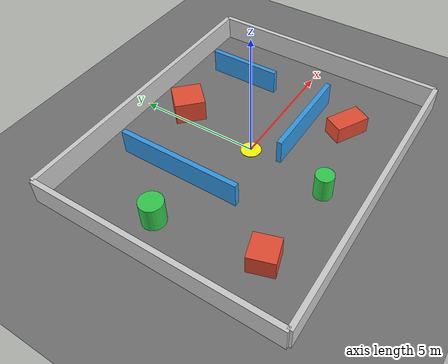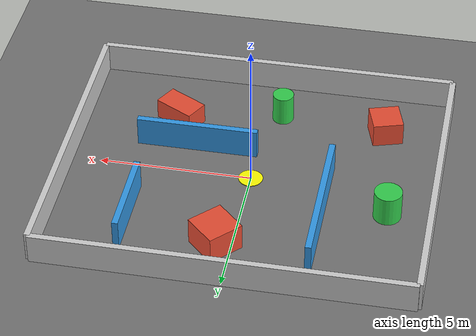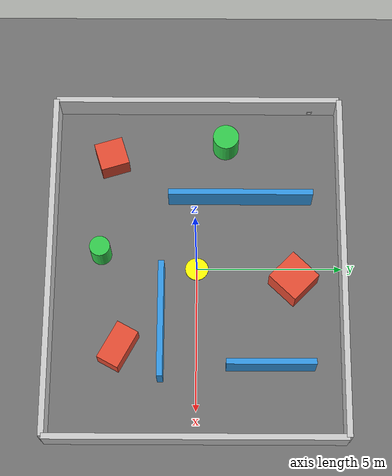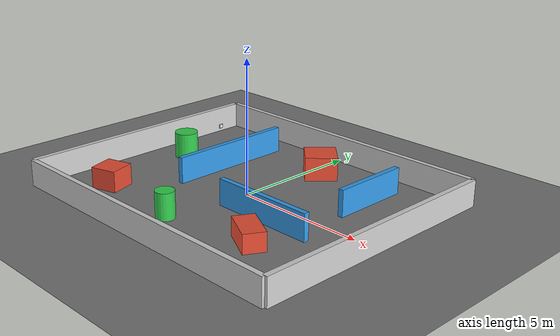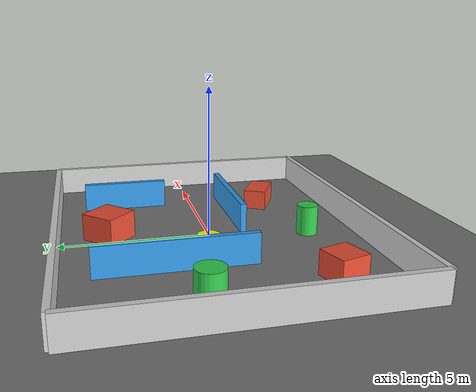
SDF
<sdf version='1.10'>
  <world name='auto_test_world'>
      <physics name='default_physics' type='ode'>
        <max_step_size>0.004</max_step_size>
        <real_time_factor>1.0</real_time_factor>
        <real_time_update_rate>250</real_time_update_rate>
      </physics>
    <plugin name='gz::sim::systems::Physics' filename='gz-sim-physics-system'/>
    <plugin name='gz::sim::systems::UserCommands' filename='gz-sim-user-commands-system'/>
    <plugin name='gz::sim::systems::SceneBroadcaster' filename='gz-sim-scene-broadcaster-system'/>
    <plugin name='gz::sim::systems::Contact' filename='gz-sim-contact-system'/>
    <plugin name='gz::sim::systems::Sensors' filename='gz-sim-sensors-system'>
      <render_engine>ogre2</render_engine>
    </plugin>
    <gravity>0 0 -9.8000000000000007</gravity>
    <magnetic_field>5.5644999999999998e-06 2.2875799999999999e-05 -4.2388400000000002e-05</magnetic_field>
    <atmosphere type='adiabatic'/>
    <scene>
      <ambient>0.400000006 0.400000006 0.400000006 1</ambient>
      <background>0.699999988 0.699999988 0.699999988 1</background>
      <shadows>true</shadows>
    </scene>
    <model name='ground_plane'>
      <static>true</static>
      <pose>0 0 0 0 0 0</pose>
      <link name='link'>
        <pose>0 0 0 0 0 0</pose>
        <collision name='collision'>
          <geometry>
            <plane>
              <normal>0 0 1</normal>
              <size>30 30</size>
            </plane>
          </geometry>
          <surface>
            <friction>
              <ode/>
            </friction>
            <bounce/>
            <contact/>
          </surface>
        </collision>
        <visual name='visual'>
          <geometry>
            <plane>
              <normal>0 0 1</normal>
              <size>30 30</size>
            </plane>
          </geometry>
          <material>
            <ambient>0.449999988 0.449999988 0.449999988 1</ambient>
            <diffuse>0.449999988 0.449999988 0.449999988 1</diffuse>
          </material>
        </visual>
        <inertial>
          <pose>0 0 0 0 0 0</pose>
          <mass>1</mass>
          <inertia>
            <ixx>1</ixx>
            <ixy>0</ixy>
            <ixz>0</ixz>
            <iyy>1</iyy>
            <iyz>0</iyz>
            <izz>1</izz>
          </inertia>
        </inertial>
        <enable_wind>false</enable_wind>
      </link>
      <self_collide>false</self_collide>
    </model>
    <model name='wall_north'>
      <static>true</static>
      <pose>0 5 0.5 0 0 0</pose>
      <link name='link'>
        <collision name='collision'>
          <geometry>
            <box>
              <size>12 0.20000000000000001 1</size>
            </box>
          </geometry>
          <surface>
            <friction>
              <ode/>
            </friction>
            <bounce/>
            <contact/>
          </surface>
        </collision>
        <visual name='visual'>
          <geometry>
            <box>
              <size>12 0.20000000000000001 1</size>
            </box>
          </geometry>
          <material>
            <ambient>0.800000012 0.800000012 0.800000012 1</ambient>
            <diffuse>0.800000012 0.800000012 0.800000012 1</diffuse>
          </material>
        </visual>
        <pose>0 0 0 0 0 0</pose>
        <inertial>
          <pose>0 0 0 0 0 0</pose>
          <mass>1</mass>
          <inertia>
            <ixx>1</ixx>
            <ixy>0</ixy>
            <ixz>0</ixz>
            <iyy>1</iyy>
            <iyz>0</iyz>
            <izz>1</izz>
          </inertia>
        </inertial>
        <enable_wind>false</enable_wind>
      </link>
      <self_collide>false</self_collide>
    </model>
    <model name='wall_south'>
      <static>true</static>
      <pose>0 -5 0.5 0 0 0</pose>
      <link name='link'>
        <collision name='collision'>
          <geometry>
            <box>
              <size>12 0.20000000000000001 1</size>
            </box>
          </geometry>
          <surface>
            <friction>
              <ode/>
            </friction>
            <bounce/>
            <contact/>
          </surface>
        </collision>
        <visual name='visual'>
          <geometry>
            <box>
              <size>12 0.20000000000000001 1</size>
            </box>
          </geometry>
          <material>
            <ambient>0.800000012 0.800000012 0.800000012 1</ambient>
            <diffuse>0.800000012 0.800000012 0.800000012 1</diffuse>
          </material>
        </visual>
        <pose>0 0 0 0 0 0</pose>
        <inertial>
          <pose>0 0 0 0 0 0</pose>
          <mass>1</mass>
          <inertia>
            <ixx>1</ixx>
            <ixy>0</ixy>
            <ixz>0</ixz>
            <iyy>1</iyy>
            <iyz>0</iyz>
            <izz>1</izz>
          </inertia>
        </inertial>
        <enable_wind>false</enable_wind>
      </link>
      <self_collide>false</self_collide>
    </model>
    <model name='wall_east'>
      <static>true</static>
      <pose>6 0 0.5 0 0 0</pose>
      <link name='link'>
        <collision name='collision'>
          <geometry>
            <box>
              <size>0.20000000000000001 10 1</size>
            </box>
          </geometry>
          <surface>
            <friction>
              <ode/>
            </friction>
            <bounce/>
            <contact/>
          </surface>
        </collision>
        <visual name='visual'>
          <geometry>
            <box>
              <size>0.20000000000000001 10 1</size>
            </box>
          </geometry>
          <material>
            <ambient>0.800000012 0.800000012 0.800000012 1</ambient>
            <diffuse>0.800000012 0.800000012 0.800000012 1</diffuse>
          </material>
        </visual>
        <pose>0 0 0 0 0 0</pose>
        <inertial>
          <pose>0 0 0 0 0 0</pose>
          <mass>1</mass>
          <inertia>
            <ixx>1</ixx>
            <ixy>0</ixy>
            <ixz>0</ixz>
            <iyy>1</iyy>
            <iyz>0</iyz>
            <izz>1</izz>
          </inertia>
        </inertial>
        <enable_wind>false</enable_wind>
      </link>
      <self_collide>false</self_collide>
    </model>
    <model name='wall_west'>
      <static>true</static>
      <pose>-6 0 0.5 0 0 0</pose>
      <link name='link'>
        <collision name='collision'>
          <geometry>
            <box>
              <size>0.20000000000000001 10 1</size>
            </box>
          </geometry>
          <surface>
            <friction>
              <ode/>
            </friction>
            <bounce/>
            <contact/>
          </surface>
        </collision>
        <visual name='visual'>
          <geometry>
            <box>
              <size>0.20000000000000001 10 1</size>
            </box>
          </geometry>
          <material>
            <ambient>0.800000012 0.800000012 0.800000012 1</ambient>
            <diffuse>0.800000012 0.800000012 0.800000012 1</diffuse>
          </material>
        </visual>
        <pose>0 0 0 0 0 0</pose>
        <inertial>
          <pose>0 0 0 0 0 0</pose>
          <mass>1</mass>
          <inertia>
            <ixx>1</ixx>
            <ixy>0</ixy>
            <ixz>0</ixz>
            <iyy>1</iyy>
            <iyz>0</iyz>
            <izz>1</izz>
          </inertia>
        </inertial>
        <enable_wind>false</enable_wind>
      </link>
      <self_collide>false</self_collide>
    </model>
    <model name='inner_wall_1'>
      <static>true</static>
      <pose>-2.5 1.5 0.5 0 0 0</pose>
      <link name='link'>
        <collision name='collision'>
          <geometry>
            <box>
              <size>0.20000000000000001 5 1</size>
            </box>
          </geometry>
          <surface>
            <friction>
              <ode/>
            </friction>
            <bounce/>
            <contact/>
          </surface>
        </collision>
        <visual name='visual'>
          <geometry>
            <box>
              <size>0.20000000000000001 5 1</size>
            </box>
          </geometry>
          <material>
            <ambient>0.200000003 0.600000024 0.899999976 1</ambient>
            <diffuse>0.200000003 0.600000024 0.899999976 1</diffuse>
          </material>
        </visual>
        <pose>0 0 0 0 0 0</pose>
        <inertial>
          <pose>0 0 0 0 0 0</pose>
          <mass>1</mass>
          <inertia>
            <ixx>1</ixx>
            <ixy>0</ixy>
            <ixz>0</ixz>
            <iyy>1</iyy>
            <iyz>0</iyz>
            <izz>1</izz>
          </inertia>
        </inertial>
        <enable_wind>false</enable_wind>
      </link>
      <self_collide>false</self_collide>
    </model>
    <model name='inner_wall_2'>
      <static>true</static>
      <pose>2 -1.2 0.5 0 0 1.5708000000000006</pose>
      <link name='link'>
        <collision name='collision'>
          <geometry>
            <box>
              <size>0.20000000000000001 4 1</size>
            </box>
          </geometry>
          <surface>
            <friction>
              <ode/>
            </friction>
            <bounce/>
            <contact/>
          </surface>
        </collision>
        <visual name='visual'>
          <geometry>
            <box>
              <size>0.20000000000000001 4 1</size>
            </box>
          </geometry>
          <material>
            <ambient>0.200000003 0.600000024 0.899999976 1</ambient>
            <diffuse>0.200000003 0.600000024 0.899999976 1</diffuse>
          </material>
        </visual>
        <pose>0 0 0 0 0 0</pose>
        <inertial>
          <pose>0 0 0 0 0 0</pose>
          <mass>1</mass>
          <inertia>
            <ixx>1</ixx>
            <ixy>0</ixy>
            <ixz>0</ixz>
            <iyy>1</iyy>
            <iyz>0</iyz>
            <izz>1</izz>
          </inertia>
        </inertial>
        <enable_wind>false</enable_wind>
      </link>
      <self_collide>false</self_collide>
    </model>
    <model name='inner_wall_3'>
      <static>true</static>
      <pose>3.5 2.5 0.5 0 0 0</pose>
      <link name='link'>
        <collision name='collision'>
          <geometry>
            <box>
              <size>0.20000000000000001 3 1</size>
            </box>
          </geometry>
          <surface>
            <friction>
              <ode/>
            </friction>
            <bounce/>
            <contact/>
          </surface>
        </collision>
        <visual name='visual'>
          <geometry>
            <box>
              <size>0.20000000000000001 3 1</size>
            </box>
          </geometry>
          <material>
            <ambient>0.200000003 0.600000024 0.899999976 1</ambient>
            <diffuse>0.200000003 0.600000024 0.899999976 1</diffuse>
          </material>
        </visual>
        <pose>0 0 0 0 0 0</pose>
        <inertial>
          <pose>0 0 0 0 0 0</pose>
          <mass>1</mass>
          <inertia>
            <ixx>1</ixx>
            <ixy>0</ixy>
            <ixz>0</ixz>
            <iyy>1</iyy>
            <iyz>0</iyz>
            <izz>1</izz>
          </inertia>
        </inertial>
        <enable_wind>false</enable_wind>
      </link>
      <self_collide>false</self_collide>
    </model>
    <model name='box_obstacle_1'>
      <static>true</static>
      <pose>-4 -3 0.40000000000000002 0 0 0.30000000000000021</pose>
      <link name='link'>
        <collision name='collision'>
          <geometry>
            <box>
              <size>1 1 0.80000000000000004</size>
            </box>
          </geometry>
          <surface>
            <friction>
              <ode/>
            </friction>
            <bounce/>
            <contact/>
          </surface>
        </collision>
        <visual name='visual'>
          <geometry>
            <box>
              <size>1 1 0.80000000000000004</size>
            </box>
          </geometry>
          <material>
            <ambient>0.899999976 0.300000012 0.200000003 1</ambient>
            <diffuse>0.899999976 0.300000012 0.200000003 1</diffuse>
          </material>
        </visual>
        <pose>0 0 0 0 0 0</pose>
        <inertial>
          <pose>0 0 0 0 0 0</pose>
          <mass>1</mass>
          <inertia>
            <ixx>1</ixx>
            <ixy>0</ixy>
            <ixz>0</ixz>
            <iyy>1</iyy>
            <iyz>0</iyz>
            <izz>1</izz>
          </inertia>
        </inertial>
        <enable_wind>false</enable_wind>
      </link>
      <self_collide>false</self_collide>
    </model>
    <model name='box_obstacle_2'>
      <static>true</static>
      <pose>2.8632633686065674 -2.6220924854278564 0.34999999999999998 0 0 -0.49999999999999994</pose>
      <link name='link'>
        <collision name='collision'>
          <geometry>
            <box>
              <size>1.3999999999999999 0.80000000000000004 0.69999999999999996</size>
            </box>
          </geometry>
          <surface>
            <friction>
              <ode/>
            </friction>
            <bounce/>
            <contact/>
          </surface>
        </collision>
        <visual name='visual'>
          <geometry>
            <box>
              <size>1.3999999999999999 0.80000000000000004 0.69999999999999996</size>
            </box>
          </geometry>
          <material>
            <ambient>0.899999976 0.300000012 0.200000003 1</ambient>
            <diffuse>0.899999976 0.300000012 0.200000003 1</diffuse>
          </material>
        </visual>
        <pose>0 0 0 0 0 0</pose>
        <inertial>
          <pose>0 0 0 0 0 0</pose>
          <mass>1</mass>
          <inertia>
            <ixx>1</ixx>
            <ixy>0</ixy>
            <ixz>0</ixz>
            <iyy>1</iyy>
            <iyz>0</iyz>
            <izz>1</izz>
          </inertia>
        </inertial>
        <enable_wind>false</enable_wind>
      </link>
      <self_collide>false</self_collide>
    </model>
    <model name='box_obstacle_3'>
      <static>true</static>
      <pose>0.5 3.2999999999999998 0.45000000000000001 0 0 0.80000000000000049</pose>
      <link name='link'>
        <collision name='collision'>
          <geometry>
            <box>
              <size>1.2 1.2 0.90000000000000002</size>
            </box>
          </geometry>
          <surface>
            <friction>
              <ode/>
            </friction>
            <bounce/>
            <contact/>
          </surface>
        </collision>
        <visual name='visual'>
          <geometry>
            <box>
              <size>1.2 1.2 0.90000000000000002</size>
            </box>
          </geometry>
          <material>
            <ambient>0.899999976 0.300000012 0.200000003 1</ambient>
            <diffuse>0.899999976 0.300000012 0.200000003 1</diffuse>
          </material>
        </visual>
        <pose>0 0 0 0 0 0</pose>
        <inertial>
          <pose>0 0 0 0 0 0</pose>
          <mass>1</mass>
          <inertia>
            <ixx>1</ixx>
            <ixy>0</ixy>
            <ixz>0</ixz>
            <iyy>1</iyy>
            <iyz>0</iyz>
            <izz>1</izz>
          </inertia>
        </inertial>
        <enable_wind>false</enable_wind>
      </link>
      <self_collide>false</self_collide>
    </model>
    <model name='cylinder_obstacle_1'>
      <static>true</static>
      <pose>-0.5 -3.2999999999999998 0.5 0 0 0</pose>
      <link name='link'>
        <collision name='collision'>
          <geometry>
            <cylinder>
              <radius>0.34999999999999998</radius>
              <length>1</length>
            </cylinder>
          </geometry>
          <surface>
            <friction>
              <ode/>
            </friction>
            <bounce/>
            <contact/>
          </surface>
        </collision>
        <visual name='visual'>
          <geometry>
            <cylinder>
              <radius>0.34999999999999998</radius>
              <length>1</length>
            </cylinder>
          </geometry>
          <material>
            <ambient>0.200000003 0.800000012 0.300000012 1</ambient>
            <diffuse>0.200000003 0.800000012 0.300000012 1</diffuse>
          </material>
        </visual>
        <pose>0 0 0 0 0 0</pose>
        <inertial>
          <pose>0 0 0 0 0 0</pose>
          <mass>1</mass>
          <inertia>
            <ixx>1</ixx>
            <ixy>0</ixy>
            <ixz>0</ixz>
            <iyy>1</iyy>
            <iyz>0</iyz>
            <izz>1</izz>
          </inertia>
        </inertial>
        <enable_wind>false</enable_wind>
      </link>
      <self_collide>false</self_collide>
    </model>
    <model name='cylinder_obstacle_2'>
      <static>true</static>
      <pose>-4.5660209655761719 1 0.5 0 0 0</pose>
      <link name='link'>
        <collision name='collision'>
          <geometry>
            <cylinder>
              <radius>0.45000000000000001</radius>
              <length>1</length>
            </cylinder>
          </geometry>
          <surface>
            <friction>
              <ode/>
            </friction>
            <bounce/>
            <contact/>
          </surface>
        </collision>
        <visual name='visual'>
          <geometry>
            <cylinder>
              <radius>0.45000000000000001</radius>
              <length>1</length>
            </cylinder>
          </geometry>
          <material>
            <ambient>0.200000003 0.800000012 0.300000012 1</ambient>
            <diffuse>0.200000003 0.800000012 0.300000012 1</diffuse>
          </material>
        </visual>
        <pose>0 0 0 0 0 0</pose>
        <inertial>
          <pose>0 0 0 0 0 0</pose>
          <mass>1</mass>
          <inertia>
            <ixx>1</ixx>
            <ixy>0</ixy>
            <ixz>0</ixz>
            <iyy>1</iyy>
            <iyz>0</iyz>
            <izz>1</izz>
          </inertia>
        </inertial>
        <enable_wind>false</enable_wind>
      </link>
      <self_collide>false</self_collide>
    </model>
    <model name='start_marker'>
      <static>true</static>
      <pose>0 0 0.01 0 0 0</pose>
      <link name='link'>
        <visual name='visual'>
          <geometry>
            <cylinder>
              <radius>0.40000000000000002</radius>
              <length>0.02</length>
            </cylinder>
          </geometry>
          <material>
            <ambient>1 1 0 1</ambient>
            <diffuse>1 1 0 1</diffuse>
          </material>
        </visual>
        <pose>0 0 0 0 0 0</pose>
        <inertial>
          <pose>0 0 0 0 0 0</pose>
          <mass>1</mass>
          <inertia>
            <ixx>1</ixx>
            <ixy>0</ixy>
            <ixz>0</ixz>
            <iyy>1</iyy>
            <iyz>0</iyz>
            <izz>1</izz>
          </inertia>
        </inertial>
        <enable_wind>false</enable_wind>
      </link>
      <self_collide>false</self_collide>
    </model>
    <model name='aruco_docking_marker'>
      <static>true</static>

      <!-- Keep your current position -->
      <pose>-5.8856201171875 3.9987900257110596 0.20 1.5701508212471083 0.038263901951036461 0.0029283230664542289</pose>

      <link name='link'>
        <collision name='collision'>
          <geometry>
            <box>
              <!-- Half of 0.35 = 0.175 -->
              <size>0.03 0.175 0.175</size>
            </box>
          </geometry>
          <surface>
            <friction>
              <ode/>
            </friction>
            <bounce/>
            <contact/>
          </surface>
        </collision>

        <visual name='white_backing_board'>
          <geometry>
            <box>
              <!-- Half of 0.35 = 0.175 -->
              <size>0.03 0.175 0.175</size>
            </box>
          </geometry>
          <material>
            <ambient>1 1 1 1</ambient>
            <diffuse>1 1 1 1</diffuse>
          </material>
        </visual>

        <visual name='aruco_marker_visual'>
          <pose>0.017000000000000001 0 0 3.1415926535897931 1.5707926536359933 3.1415926535897931</pose>
          <geometry>
            <plane>
              <normal>0 0 1</normal>
              <!-- Half of 0.25 = 0.125 -->
              <size>0.125 0.125</size>
            </plane>
          </geometry>
          <material>
            <ambient>1 1 1 1</ambient>
            <diffuse>1 1 1 1</diffuse>
            <pbr>
              <metal>
                <albedo_map>file:///home/ghosts/unknown_robot2_ws/src/unknown_robot2_description/media/materials/textures/aruco_0.png</albedo_map>
              </metal>
            </pbr>
          </material>
        </visual>

        <pose>0 0 0 0 0 0</pose>
        <inertial>
          <pose>0 0 0 0 0 0</pose>
          <mass>1</mass>
          <inertia>
            <ixx>1</ixx>
            <ixy>0</ixy>
            <ixz>0</ixz>
            <iyy>1</iyy>
            <iyz>0</iyz>
            <izz>1</izz>
          </inertia>
        </inertial>
        <enable_wind>false</enable_wind>
      </link>

      <self_collide>false</self_collide>
    </model>

    <light name='sun' type='directional'>
      <pose>0 0 10 0 0 0</pose>
      <cast_shadows>true</cast_shadows>
      <intensity>1</intensity>
      <direction>-0.5 0.10000000000000001 -0.90000000000000002</direction>
      <diffuse>0.800000012 0.800000012 0.800000012 1</diffuse>
      <specular>0.200000003 0.200000003 0.200000003 1</specular>
      <attenuation>
        <range>1000</range>
        <linear>0.01</linear>
        <constant>0.90000000000000002</constant>
        <quadratic>0.001</quadratic>
      </attenuation>
      <spot>
        <inner_angle>0</inner_angle>
        <outer_angle>0</outer_angle>
        <falloff>0</falloff>
      </spot>
    </light>
  </world>
</sdf>
